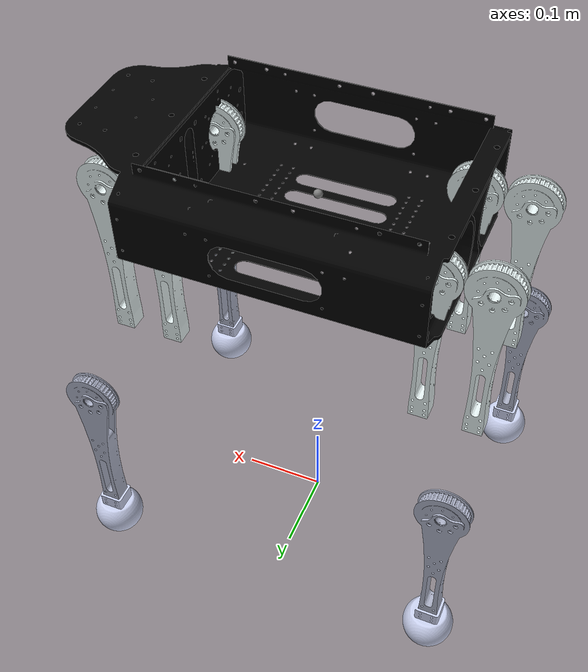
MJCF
<mujoco model="new_dog">
    <!-- blanceinertia = "true"  -->
    <compiler angle="radian" meshdir="../meshes/" autolimits = "true"  />
    <!-- 决定了椭圆摩擦锥的摩擦与法线约束阻抗的比率 -->
    <option
      gravity = "0 0 -9.81"
      cone="elliptic"
      impratio="100"
    />

  <default>
    <default class="new_dog">
      <geom friction="0.4" margin="0.001" condim="1"/>
      <joint axis="0 1 0" damping="0.1" armature="0.01" frictionloss="0.2"/>
      <motor ctrlrange="-23.7 23.7"/>
      <default class="abduction">
        <joint axis="1 0 0" range="-1.0472 1.0472"/>
      </default>
      <default class="hip">
        <default class="front_hip"> <joint range="-1.5708 3.4907"/> </default>
        <default class="back_hip" > <joint range="-0.5236 4.5379"/> </default>
      </default>
      <default class="knee">
        <joint range="-2.7227 -0.83776"/>
        <motor ctrlrange="-45.43 45.43"/>
      </default>
      <default class="visual">
        <geom type="mesh" contype="0" conaffinity="0" group="2"/>
      </default>
      <!--  几何体尺寸     相对于父刚体的位置       接触优先级    接触条件维度  滑动摩擦，扭转摩擦，滚动摩擦-->
      <default class="collision">
        <geom group="3"/>
        <default class="foot">
          <geom size="0.03" pos="0 0 -0.22" priority="1" condim="6" friction="0.4 0.02 0.01"/>
        </default>
      </default>
    </default>
  </default>

    <asset>
        <material name="metal" rgba=".9 .95 .95 1" />
        <material name="black" rgba="0 0 0 1" />
        <material name="white" rgba="1 1 1 1" />
        <material name="gray" rgba="0.671705 0.692426 0.774270 1" />

        <mesh name="base_link"  file="base_link.STL" />
        <mesh name="leg1_link1" file="leg1_link1.STL" />
        <mesh name="leg1_link2" file="leg1_link2.STL" />
        <mesh name="leg1_link3" file="leg1_link3.STL" />
        <mesh name="leg1_link4" file="leg1_link4.STL" />
        <mesh name="leg2_link1" file="leg2_link1.STL" />
        <mesh name="leg2_link2" file="leg2_link2.STL" />
        <mesh name="leg2_link3" file="leg2_link3.STL" />
        <mesh name="leg2_link4" file="leg2_link4.STL" />
        <mesh name="leg3_link1" file="leg3_link1.STL" />
        <mesh name="leg3_link2" file="leg3_link2.STL" />
        <mesh name="leg3_link3" file="leg3_link3.STL" />
        <mesh name="leg3_link4" file="leg3_link4.STL" />
        <mesh name="leg4_link1" file="leg4_link1.STL" />
        <mesh name="leg4_link2" file="leg4_link2.STL" />
        <mesh name="leg4_link3" file="leg4_link3.STL" />
        <mesh name="leg4_link4" file="leg4_link4.STL" />
    </asset>

    <worldbody>
      <body name="base_link" pos="0 0 0.5" childclass="new_dog">
        <inertial pos="0 0 0" quat="-0.000543471 0.713435 -0.00173769 0.700719"
        mass="6.921" diaginertia="0.107027 0.0980771 0.0244531" />
        <freejoint />
        <site name="imu" pos="0 0 0" />
        <geom mesh="base_link" material="black" class="visual" />
        <body name="leg1_link1" pos="0.15 -0.07 0.0">
          <inertial pos="0 0 0"  quat="0.538559 0.538559 0.458208 0.458208" mass="1.0316" diaginertia="0.00244868 0.0024 0.000551317" />
          <geom  mesh="leg1_link1" material="metal" class="visual" />
          <joint name="leg1_1_joint" class="abduction"/>
          <body name="leg1_link2" pos="0.061332 0 0">
              <inertial pos="-0.0001 -0.0637 -0.0259"
              quat="0.989215 0.146472 0 0" mass="0.75"
              diaginertia="0.0031 0.00301194 0.000488057" />
              <joint name="leg1_2_joint" class="front_hip"/>
              <geom mesh="leg1_link2" material="metal" class="visual" />
              <geom type="cylinder" size="0.02 0.1" pos="0 0 -0.05" class="collision" />
              <body name="leg1_link3" pos="0 -0.096681 -0.23497">
                  <inertial pos="-0.000325676 0 -0.11121"
                  quat="0.707107 -0.000299959 -0.000299959 0.707107" mass="0.3048"
                  diaginertia="0.00294545 0.00294545 7.90565e-10" />
                  <joint name="leg1_3_joint" class="knee" />
                  <geom mesh="leg1_link3" material="gray" class="visual" />
                  <geom type="box" size="0.05 0.01 0.1" pos="0 0 -0.1" class="collision" />
                  <geom pos="-0.00019719 0 -0.22142" type="mesh" contype="0" conaffinity="0" group="1" rgba="0.79216 0.81961 0.93333 1" mesh="leg1_link4" />
                  <geom pos="-0.00019719 0 -0.22142" type="mesh" rgba="0.79216 0.81961 0.93333 1" mesh="leg1_link4" />
                  <geom name="FR" class="foot" />
                  <body name="FR_foot" pos="0 0 -0.213" />
              </body>
          </body>
        </body>
        <body name="leg2_link1" pos="0.15 0.07 0.0">
            <inertial pos="0 0 0" quat="0.458208 0.458208 0.538559 0.538559" mass="1.0316" diaginertia="0.00244868 0.0024 0.000551317" />
            <geom  mesh="leg2_link1" material="metal" class="visual" />
            <joint name="leg2_1_joint" class="abduction"/>
            <body name="leg2_link2" pos="0.061332 0 0">
                <inertial pos="0.0002 0.0618 -0.0253" quat="0.987425 -0.158091 0 0" mass="0.75" diaginertia="0.003 0.00293004 0.000569958" />
                <joint name="leg2_2_joint" class="front_hip"/>
                <geom mesh="leg2_link2" material="metal" class="visual" />
                <geom type="cylinder" size="0.02 0.1" pos="0 0 -0.05" class="collision" />
                <body name="leg2_link3" pos="0 0.096681 -0.23546">
                    <inertial pos="-0.000325676 0.0001 -0.11121" quat="0.707107 -0.000299959 -0.000299959 0.707107" mass="0.3048" diaginertia="0.00294545 0.00294545 7.90565e-10" />
                    <joint name="leg2_3_joint" class="knee" />
                    <geom mesh="leg2_link3" material="gray" class="visual" />
                    <geom type="box" size="0.05 0.01 0.1" pos="0 0 -0.1" class="collision" />
                    <geom pos="-0.00019719 0 -0.22142" type="mesh" contype="0" conaffinity="0" group="1" rgba="0.79216 0.81961 0.93333 1" mesh="leg2_link4" />
                    <geom pos="-0.00019719 0 -0.22142" type="mesh" rgba="0.79216 0.81961 0.93333 1" mesh="leg2_link4" />
                    <geom name="FL" class="foot" />
                    <body name="FL_foot" pos="0 0 -0.213" />
                </body>
            </body>
        </body>
        <body name="leg3_link1" pos="-0.15 -0.07 0.0">
            <inertial pos="0 0 0" quat="0.458208 0.458208 0.538559 0.538559" mass="1.0316" diaginertia="0.00244868 0.0024 0.000551317" />
            <joint name="leg3_1_joint"  class="abduction"/>
            <geom  mesh="leg3_link1" material="metal" class="visual" />
            <body name="leg3_link2" pos="-0.061332 0 0">
                <inertial pos="-0.0001 -0.0636 -0.026" quat="0.989215 0.146472 0 0" mass="0.75" diaginertia="0.0031 0.00301194 0.000488057" />
                <joint name="leg3_2_joint"  class="back_hip"/>
                <geom mesh="leg3_link2" material="metal" class="visual" />
                <geom type="cylinder" size="0.02 0.1" pos="0 0 -0.05" class="collision" />
                <body name="leg3_link3" pos="0 -0.096681 -0.23497">
                    <inertial pos="-0.000327736 0.0003 -0.11131" quat="0.707107 -0.000291647 -0.000291647 0.707107" mass="0.3048" diaginertia="0.00294545 0.00294545 7.47358e-10" />
                    <joint name="leg3_3_joint" class="knee"/>
                    <geom mesh="leg3_link3" material="gray" class="visual" />
                    <geom type="box" size="0.05 0.01 0.1" pos="0 0 -0.1" class="collision" />
                    <geom pos="0.00019719 0 -0.22142" type="mesh" contype="0" conaffinity="0" group="1" rgba="0.79216 0.81961 0.93333 1" mesh="leg3_link4" />
                    <geom pos="0.00019719 0 -0.22142" type="mesh" rgba="0.79216 0.81961 0.93333 1" mesh="leg3_link4" />
                    <geom name="BR" class="foot" />
                    <body name="BR_foot" pos="0 0 -0.213" />
                </body>
            </body>
        </body>
        <body name="leg4_link1" pos="-0.15 0.07 0.0">
            <inertial pos="0 0 0" quat="0.538559 0.538559 0.458208 0.458208" mass="1.0316" diaginertia="0.00244868 0.0024 0.000551317" />
            <geom  mesh="leg4_link1" material="metal" class="visual" />
            <joint name="leg4_1_joint"   class="abduction"/>
            <body name="leg4_link2" pos="-0.061332 -5.5649e-05 -0.00034723">
                <inertial pos="0.0001 0.064 -0.026" quat="0.989215 -0.146472 0 0" mass="0.75" diaginertia="0.0031 0.00301194 0.000488057" />
                <joint name="leg4_2_joint" class="back_hip"/>
                <geom mesh="leg4_link2" material="metal" class="visual" />
                <geom type="cylinder" size="0.02 0.1" pos="0 0 -0.05" class="collision" />
                <body name="leg4_link3" pos="0 0.096681 -0.23497">
                    <inertial pos="-0.000327736 0.0003 -0.11131" quat="0.707107 -0.000291647 -0.000291647 0.707107" mass="0.3048" diaginertia="0.00294545 0.00294545 7.47358e-10" />
                    <joint name="leg4_3_joint" class="knee" />
                    <geom mesh="leg4_link3" material="gray" class="visual" />
                    <geom type="box" size="0.05 0.01 0.1" pos="0 0 -0.1" class="collision" />
                    <geom pos="0.00019719 0 -0.22142" type="mesh" contype="0" conaffinity="0" group="1" rgba="0.79216 0.81961 0.93333 1" mesh="leg4_link4" />
                    <geom pos="0.00019719 0 -0.22142" type="mesh" rgba="0.79216 0.81961 0.93333 1" mesh="leg4_link4" />
                    <geom name="BL" class="foot" />
                    <body name="BL_foot" pos="0 0 -0.213" />
                </body>
            </body>
        </body>
      </body>
    </worldbody>

    <actuator>
        <motor name="leg1_1"  joint="leg1_1_joint" />
        <motor name="leg1_2"  joint="leg1_2_joint" />
        <motor name="leg1_3"  joint="leg1_3_joint" />
        <motor name="leg2_1"  joint="leg2_1_joint" />
        <motor name="leg2_2"  joint="leg2_2_joint" />
        <motor name="leg2_3"  joint="leg2_3_joint" />
        <motor name="leg3_1"  joint="leg3_1_joint" />
        <motor name="leg3_2"  joint="leg3_2_joint" />
        <motor name="leg3_3"  joint="leg3_3_joint" />
        <motor name="leg4_1"  joint="leg4_1_joint" />
        <motor name="leg4_2"  joint="leg4_2_joint" />
        <motor name="leg4_3"  joint="leg4_3_joint" />
    </actuator>

  <sensor>
    <jointpos name="leg1_1_p"  joint="leg1_1_joint" />
    <jointpos name="leg1_2_p"  joint="leg1_2_joint" />
    <jointpos name="leg1_3_p"  joint="leg1_3_joint" />
    <jointpos name="leg2_1_p"  joint="leg2_1_joint" />
    <jointpos name="leg2_2_p"  joint="leg2_2_joint" />
    <jointpos name="leg2_3_p"  joint="leg2_3_joint" />
    <jointpos name="leg3_1_p"  joint="leg3_1_joint" />
    <jointpos name="leg3_2_p"  joint="leg3_2_joint" />
    <jointpos name="leg3_3_p"  joint="leg3_3_joint" />
    <jointpos name="leg4_1_p"  joint="leg4_1_joint" />
    <jointpos name="leg4_2_p"  joint="leg4_2_joint" />
    <jointpos name="leg4_3_p"  joint="leg4_3_joint" />

    <jointvel name="leg1_1_v"  joint="leg1_1_joint" />
    <jointvel name="leg1_2_v"  joint="leg1_2_joint" />
    <jointvel name="leg1_3_v"  joint="leg1_3_joint" />
    <jointvel name="leg2_1_v"  joint="leg2_1_joint" />
    <jointvel name="leg2_2_v"  joint="leg2_2_joint" />
    <jointvel name="leg2_3_v"  joint="leg2_3_joint" />
    <jointvel name="leg3_1_v"  joint="leg3_1_joint" />
    <jointvel name="leg3_2_v"  joint="leg3_2_joint" />
    <jointvel name="leg3_3_v"  joint="leg3_3_joint" />
    <jointvel name="leg4_1_v"  joint="leg4_1_joint" />
    <jointvel name="leg4_2_v"  joint="leg4_2_joint" />
    <jointvel name="leg4_3_v"  joint="leg4_3_joint" />

    <jointvel name="leg1_1_t"  joint="leg1_1_joint" noise="0.01" />
    <jointvel name="leg1_2_t"  joint="leg1_2_joint" noise="0.01" />
    <jointvel name="leg1_3_t"  joint="leg1_3_joint" noise="0.01" />
    <jointvel name="leg2_1_t"  joint="leg2_1_joint" noise="0.01" />
    <jointvel name="leg2_2_t"  joint="leg2_2_joint" noise="0.01" />
    <jointvel name="leg2_3_t"  joint="leg2_3_joint" noise="0.01" />
    <jointvel name="leg3_1_t"  joint="leg3_1_joint" noise="0.01" />
    <jointvel name="leg3_2_t"  joint="leg3_2_joint" noise="0.01" />
    <jointvel name="leg3_3_t"  joint="leg3_3_joint" noise="0.01" />
    <jointvel name="leg4_1_t"  joint="leg4_1_joint" noise="0.01" />
    <jointvel name="leg4_2_t"  joint="leg4_2_joint" noise="0.01" />
    <jointvel name="leg4_3_t"  joint="leg4_3_joint" noise="0.01" />

    <framequat      name="imu_quat" objtype="site" objname="imu" />
    <gyro           name="imu_gyro" site="imu" />
    <accelerometer  name="imu_acc"  site="imu" />

    <framepos    name="frame_pos" objtype="site" objname="imu" />
    <framelinvel name="frame_vel" objtype="site" objname="imu" />
  </sensor>

  <keyframe>
    <key name="home"
      qpos="0 0 0.05
            1 0 0 0
            0 2.7 -2.53
            0 2.7 -2.53
            0 2.7 -2.53
            0 2.7 -2.53 "
      ctrl="0 2.7 -2.53
            0 2.7 -2.53
            0 2.7 -2.53
            0 2.7 -2.53 " />
  </keyframe>

</mujoco>
